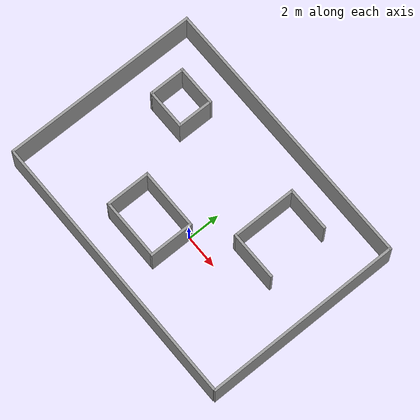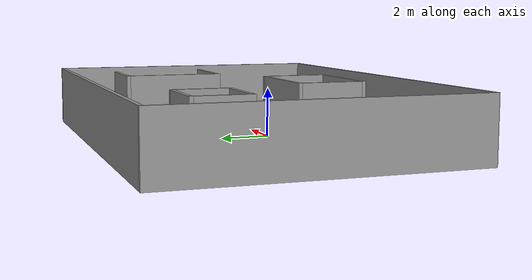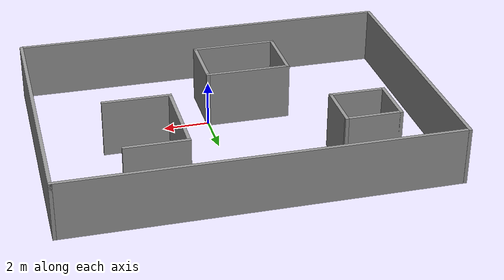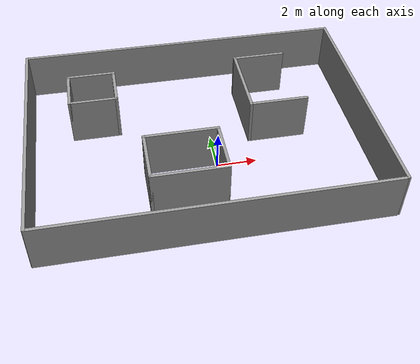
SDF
<?xml version='1.0'?>
<sdf version='1.7'>
  <model name='3object'>
    <pose>-0.699195 1.34676 0 0 -0 0</pose>
    <link name='Wall_0'>
      <collision name='Wall_0_Collision'>
        <geometry>
          <box>
            <size>12 0.15 2.5</size>
          </box>
        </geometry>
        <pose>0 0 1.25 0 -0 0</pose>
      </collision>
      <visual name='Wall_0_Visual'>
        <pose>0 0 1.25 0 -0 0</pose>
        <geometry>
          <box>
            <size>12 0.15 2.5</size>
          </box>
        </geometry>
        <material>
          <script>
            <uri>file://media/materials/scripts/gazebo.material</uri>
            <name>Gazebo/Grey</name>
          </script>
          <ambient>1 1 1 1</ambient>
        </material>
        <meta>
          <layer>0</layer>
        </meta>
      </visual>
      <pose>-8.3695 0.018719 0 0 -0 -1.5708</pose>
    </link>
    <link name='Wall_17'>
      <collision name='Wall_17_Collision'>
        <geometry>
          <box>
            <size>2.25 0.15 2.5</size>
          </box>
        </geometry>
        <pose>0 0 1.25 0 -0 0</pose>
      </collision>
      <visual name='Wall_17_Visual'>
        <pose>0 0 1.25 0 -0 0</pose>
        <geometry>
          <box>
            <size>2.25 0.15 2.5</size>
          </box>
        </geometry>
        <material>
          <script>
            <uri>file://media/materials/scripts/gazebo.material</uri>
            <name>Gazebo/Grey</name>
          </script>
          <ambient>1 1 1 1</ambient>
        </material>
        <meta>
          <layer>0</layer>
        </meta>
      </visual>
      <pose>-6.24223 2.84432 0 0 -0 -1.5708</pose>
    </link>
    <link name='Wall_18'>
      <collision name='Wall_18_Collision'>
        <geometry>
          <box>
            <size>2.5 0.15 2.5</size>
          </box>
        </geometry>
        <pose>0 0 1.25 0 -0 0</pose>
      </collision>
      <visual name='Wall_18_Visual'>
        <pose>0 0 1.25 0 -0 0</pose>
        <geometry>
          <box>
            <size>2.5 0.15 2.5</size>
          </box>
        </geometry>
        <material>
          <script>
            <uri>file://media/materials/scripts/gazebo.material</uri>
            <name>Gazebo/Grey</name>
          </script>
          <ambient>1 1 1 1</ambient>
        </material>
        <meta>
          <layer>0</layer>
        </meta>
      </visual>
      <pose>-5.06723 1.79432 0 0 -0 0</pose>
    </link>
    <link name='Wall_19'>
      <collision name='Wall_19_Collision'>
        <geometry>
          <box>
            <size>2.25 0.15 2.5</size>
          </box>
        </geometry>
        <pose>0 0 1.25 0 -0 0</pose>
      </collision>
      <visual name='Wall_19_Visual'>
        <pose>0 0 1.25 0 -0 0</pose>
        <geometry>
          <box>
            <size>2.25 0.15 2.5</size>
          </box>
        </geometry>
        <material>
          <script>
            <uri>file://media/materials/scripts/gazebo.material</uri>
            <name>Gazebo/Grey</name>
          </script>
          <ambient>1 1 1 1</ambient>
        </material>
        <meta>
          <layer>0</layer>
        </meta>
      </visual>
      <pose>-3.89223 2.84432 0 0 -0 1.5708</pose>
    </link>
    <link name='Wall_2'>
      <collision name='Wall_2_Collision'>
        <geometry>
          <box>
            <size>16.75 0.15 2.5</size>
          </box>
        </geometry>
        <pose>0 0 1.25 0 -0 0</pose>
      </collision>
      <visual name='Wall_2_Visual'>
        <pose>0 0 1.25 0 -0 0</pose>
        <geometry>
          <box>
            <size>16.75 0.15 2.5</size>
          </box>
        </geometry>
        <material>
          <script>
            <uri>file://media/materials/scripts/gazebo.material</uri>
            <name>Gazebo/Grey</name>
          </script>
          <ambient>1 1 1 1</ambient>
        </material>
        <meta>
          <layer>0</layer>
        </meta>
      </visual>
      <pose>0.069502 5.93935 0 0 -0 0</pose>
    </link>
    <link name='Wall_20'>
      <collision name='Wall_20_Collision'>
        <geometry>
          <box>
            <size>2.5 0.15 2.5</size>
          </box>
        </geometry>
        <pose>0 0 1.25 0 -0 0</pose>
      </collision>
      <visual name='Wall_20_Visual'>
        <pose>0 0 1.25 0 -0 0</pose>
        <geometry>
          <box>
            <size>2.5 0.15 2.5</size>
          </box>
        </geometry>
        <material>
          <script>
            <uri>file://media/materials/scripts/gazebo.material</uri>
            <name>Gazebo/Grey</name>
          </script>
          <ambient>1 1 1 1</ambient>
        </material>
        <meta>
          <layer>0</layer>
        </meta>
      </visual>
      <pose>-5.06723 3.89432 0 0 -0 3.14159</pose>
    </link>
    <link name='Wall_23'>
      <collision name='Wall_23_Collision'>
        <geometry>
          <box>
            <size>2.75 0.15 2.5</size>
          </box>
        </geometry>
        <pose>0 0 1.25 0 -0 0</pose>
      </collision>
      <visual name='Wall_23_Visual'>
        <pose>0 0 1.25 0 -0 0</pose>
        <geometry>
          <box>
            <size>2.75 0.15 2.5</size>
          </box>
        </geometry>
        <material>
          <script>
            <uri>file://media/materials/scripts/gazebo.material</uri>
            <name>Gazebo/Grey</name>
          </script>
          <ambient>1 1 1 1</ambient>
        </material>
        <meta>
          <layer>0</layer>
        </meta>
      </visual>
      <pose>3.99018 4.02999 0 0 -0 3.14159</pose>
    </link>
    <link name='Wall_24'>
      <collision name='Wall_24_Collision'>
        <geometry>
          <box>
            <size>4 0.15 2.5</size>
          </box>
        </geometry>
        <pose>0 0 1.25 0 -0 0</pose>
      </collision>
      <visual name='Wall_24_Visual'>
        <pose>0 0 1.25 0 -0 0</pose>
        <geometry>
          <box>
            <size>4 0.15 2.5</size>
          </box>
        </geometry>
        <material>
          <script>
            <uri>file://media/materials/scripts/gazebo.material</uri>
            <name>Gazebo/Grey</name>
          </script>
          <ambient>1 1 1 1</ambient>
        </material>
        <meta>
          <layer>0</layer>
        </meta>
      </visual>
      <pose>2.69019 2.10499 0 0 -0 -1.5708</pose>
    </link>
    <link name='Wall_25'>
      <collision name='Wall_25_Collision'>
        <geometry>
          <box>
            <size>3 0.15 2.5</size>
          </box>
        </geometry>
        <pose>0 0 1.25 0 -0 0</pose>
      </collision>
      <visual name='Wall_25_Visual'>
        <pose>0 0 1.25 0 -0 0</pose>
        <geometry>
          <box>
            <size>3 0.15 2.5</size>
          </box>
        </geometry>
        <material>
          <script>
            <uri>file://media/materials/scripts/gazebo.material</uri>
            <name>Gazebo/Grey</name>
          </script>
          <ambient>1 1 1 1</ambient>
        </material>
        <meta>
          <layer>0</layer>
        </meta>
      </visual>
      <pose>4.11519 0.179991 0 0 -0 0</pose>
    </link>
    <link name='Wall_27'>
      <collision name='Wall_27_Collision'>
        <geometry>
          <box>
            <size>2.75 0.15 2.5</size>
          </box>
        </geometry>
        <pose>0 0 1.25 0 -0 0</pose>
      </collision>
      <visual name='Wall_27_Visual'>
        <pose>0 0 1.25 0 -0 0</pose>
        <geometry>
          <box>
            <size>2.75 0.15 2.5</size>
          </box>
        </geometry>
        <material>
          <script>
            <uri>file://media/materials/scripts/gazebo.material</uri>
            <name>Gazebo/Grey</name>
          </script>
          <ambient>1 1 1 1</ambient>
        </material>
        <meta>
          <layer>0</layer>
        </meta>
      </visual>
      <pose>-2.88426 -2.56135 0 0 -0 -1.5708</pose>
    </link>
    <link name='Wall_28'>
      <collision name='Wall_28_Collision'>
        <geometry>
          <box>
            <size>3.75 0.15 2.5</size>
          </box>
        </geometry>
        <pose>0 0 1.25 0 -0 0</pose>
      </collision>
      <visual name='Wall_28_Visual'>
        <pose>0 0 1.25 0 -0 0</pose>
        <geometry>
          <box>
            <size>3.75 0.15 2.5</size>
          </box>
        </geometry>
        <material>
          <script>
            <uri>file://media/materials/scripts/gazebo.material</uri>
            <name>Gazebo/Grey</name>
          </script>
          <ambient>1 1 1 1</ambient>
        </material>
        <meta>
          <layer>0</layer>
        </meta>
      </visual>
      <pose>-1.08427 -3.86135 0 0 -0 0</pose>
    </link>
    <link name='Wall_29'>
      <collision name='Wall_29_Collision'>
        <geometry>
          <box>
            <size>2.75 0.15 2.5</size>
          </box>
        </geometry>
        <pose>0 0 1.25 0 -0 0</pose>
      </collision>
      <visual name='Wall_29_Visual'>
        <pose>0 0 1.25 0 -0 0</pose>
        <geometry>
          <box>
            <size>2.75 0.15 2.5</size>
          </box>
        </geometry>
        <material>
          <script>
            <uri>file://media/materials/scripts/gazebo.material</uri>
            <name>Gazebo/Grey</name>
          </script>
          <ambient>1 1 1 1</ambient>
        </material>
        <meta>
          <layer>0</layer>
        </meta>
      </visual>
      <pose>0.715735 -2.56135 0 0 -0 1.5708</pose>
    </link>
    <link name='Wall_30'>
      <collision name='Wall_30_Collision'>
        <geometry>
          <box>
            <size>3.75 0.15 2.5</size>
          </box>
        </geometry>
        <pose>0 0 1.25 0 -0 0</pose>
      </collision>
      <visual name='Wall_30_Visual'>
        <pose>0 0 1.25 0 -0 0</pose>
        <geometry>
          <box>
            <size>3.75 0.15 2.5</size>
          </box>
        </geometry>
        <material>
          <script>
            <uri>file://media/materials/scripts/gazebo.material</uri>
            <name>Gazebo/Grey</name>
          </script>
          <ambient>1 1 1 1</ambient>
        </material>
        <meta>
          <layer>0</layer>
        </meta>
      </visual>
      <pose>-1.08427 -1.26135 0 0 -0 3.14159</pose>
    </link>
    <link name='Wall_4'>
      <collision name='Wall_4_Collision'>
        <geometry>
          <box>
            <size>12 0.15 2.5</size>
          </box>
        </geometry>
        <pose>0 0 1.25 0 -0 0</pose>
      </collision>
      <visual name='Wall_4_Visual'>
        <pose>0 0 1.25 0 -0 0</pose>
        <geometry>
          <box>
            <size>12 0.15 2.5</size>
          </box>
        </geometry>
        <material>
          <script>
            <uri>file://media/materials/scripts/gazebo.material</uri>
            <name>Gazebo/Grey</name>
          </script>
          <ambient>1 1 1 1</ambient>
        </material>
        <meta>
          <layer>0</layer>
        </meta>
      </visual>
      <pose>8.3695 0.014351 0 0 -0 -1.5708</pose>
    </link>
    <link name='Wall_6'>
      <collision name='Wall_6_Collision'>
        <geometry>
          <box>
            <size>16.75 0.15 2.5</size>
          </box>
        </geometry>
        <pose>0 0 1.25 0 -0 0</pose>
      </collision>
      <visual name='Wall_6_Visual'>
        <pose>0 0 1.25 0 -0 0</pose>
        <geometry>
          <box>
            <size>16.75 0.15 2.5</size>
          </box>
        </geometry>
        <material>
          <script>
            <uri>file://media/materials/scripts/gazebo.material</uri>
            <name>Gazebo/Grey</name>
          </script>
          <ambient>1 1 1 1</ambient>
        </material>
        <meta>
          <layer>0</layer>
        </meta>
      </visual>
      <pose>-0.044503 -5.94372 0 0 -0 0</pose>
    </link>
    <static>1</static>
  </model>
</sdf>
